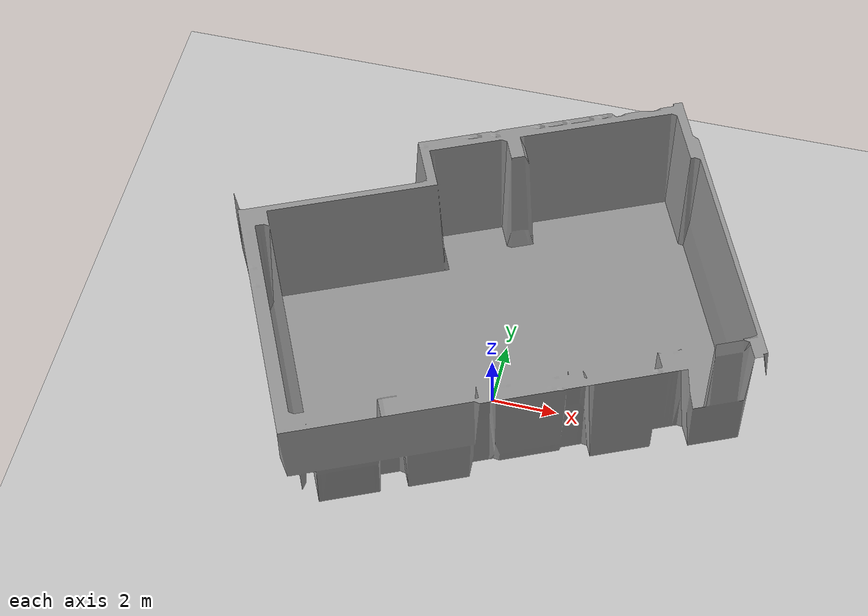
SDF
<?xml version="1.0"?>
<sdf version="1.8">
  <world name="default">
    <scene>
      <shadows>0</shadows>
    </scene>

    <gui fullscreen='0'>
      <camera name='user_camera'>
        <pose frame=''>0.319654 -0.235002 9.29441 0 1.5138 0.009599</pose>
        <view_controller>orbit</view_controller>
        <projection_type>perspective</projection_type>
      </camera>
    </gui>

    <physics type="ode">
      <real_time_update_rate>1000.0</real_time_update_rate>
      <max_step_size>0.001</max_step_size>
      <real_time_factor>1</real_time_factor>
      <ode>
        <solver>
          <type>quick</type>
          <iters>150</iters>
          <precon_iters>0</precon_iters>
          <sor>1.400000</sor>
          <use_dynamic_moi_rescaling>1</use_dynamic_moi_rescaling>
        </solver>
        <constraints>
          <cfm>0.00001</cfm>
          <erp>0.2</erp>
          <contact_max_correcting_vel>2000.000000</contact_max_correcting_vel>
          <contact_surface_layer>0.01000</contact_surface_layer>
        </constraints>
      </ode>
    </physics>
    <plugin
      filename="gz-sim-physics-system"
      name="gz::sim::systems::Physics">
    </plugin>
    <plugin
      filename="gz-sim-user-commands-system"
      name="gz::sim::systems::UserCommands">
    </plugin>
    <plugin
      filename="gz-sim-scene-broadcaster-system"
      name="gz::sim::systems::SceneBroadcaster">
    </plugin>
    <plugin
      filename="gz-sim-sensors-system"
      name="gz::sim::systems::Sensors">
      <render_engine>ogre2</render_engine>
    </plugin>
    <plugin
      filename="gz-sim-imu-system"
      name="gz::sim::systems::Imu">
    </plugin>

    <include>
      <uri>https://fuel.gazebosim.org/1.0/OpenRobotics/models/Ground Plane</uri>
    </include>

    <include>
      <uri>https://fuel.gazebosim.org/1.0/OpenRobotics/models/Sun</uri>
    </include>

    <model name="turtlebot3_custom">
      <static>1</static>
      <include>
        <uri>model://turtlebot3_custom</uri>
      </include>
    </model>

  </world>
</sdf>

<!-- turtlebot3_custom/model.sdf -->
<sdf version='1.6'>
  <model name='turtlebot3_custom'>

    <link name='custom_walls'>
      <self_collide>0</self_collide>
      <kinematic>0</kinematic>
      <inertial>
        <mass>5000</mass> <!-- Mass in kilograms -->
        <inertia>
          <ixx>0.1</ixx>
          <iyy>0.1</iyy>
          <izz>0.1</izz>
          <ixy>0.0</ixy>
          <ixz>0.0</ixz>
          <iyz>0.0</iyz>
        </inertia>
      </inertial>
      <pose frame=''>0 0 5 0 0 1</pose>
      <self_collide>0</self_collide>
      <kinematic>0</kinematic>
      <visual name='custom_walls_visual'>
        <pose frame=''>0 0 0 0 0 1</pose>
        <geometry>
          <mesh>
            <uri>model://turtlebot3_custom/meshes/custom_walls.stl</uri>
            <scale>1.0 1.0 1.0</scale>
          </mesh>
        </geometry>
        <material>
          <script>
            <uri>file://media/materials/scripts/gazebo.material</uri>
            <name>Gazebo/Grey</name>
          </script>
        </material>
      </visual>
      <collision name='custom_walls_collision'>
        <laser_retro>0</laser_retro>
        <max_contacts>10</max_contacts>
        <pose frame=''>0 0 0 0 0 1</pose>
        <geometry>
          <mesh>
            <uri>model://turtlebot3_custom/meshes/custom_walls.stl</uri>
            <scale>1.0 1.0 1.0</scale>
          </mesh>
        </geometry>
        <surface>
          <bounce/>
	  <friction>
            <ode>
              <mu>1</mu>
              <mu2>1</mu2>
              <fdir1>0 0 0</fdir1>
              <slip1>0</slip1>
              <slip2>0</slip2>
            </ode>
            <torsional>
              <coefficient>1</coefficient>
              <patch_radius>0</patch_radius>
              <surface_radius>0</surface_radius>
              <use_patch_radius>1</use_patch_radius>
              <ode>
                <slip>0</slip>
              </ode>
            </torsional>
          </friction>
	  <contact>
          <ode/>
          </contact>
        </surface>
      </collision>
    </link>
  </model>
</sdf>
